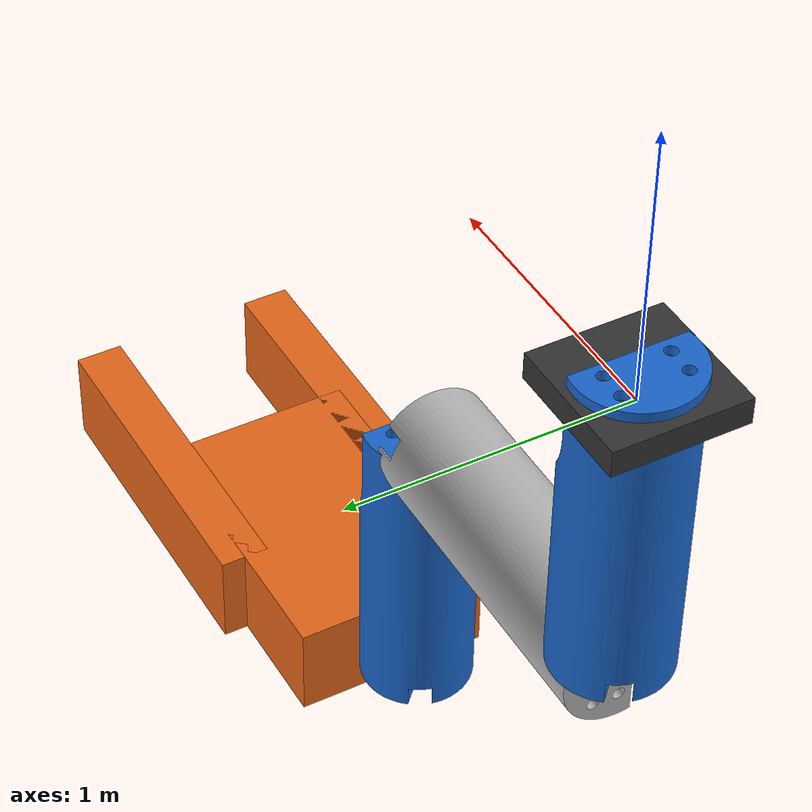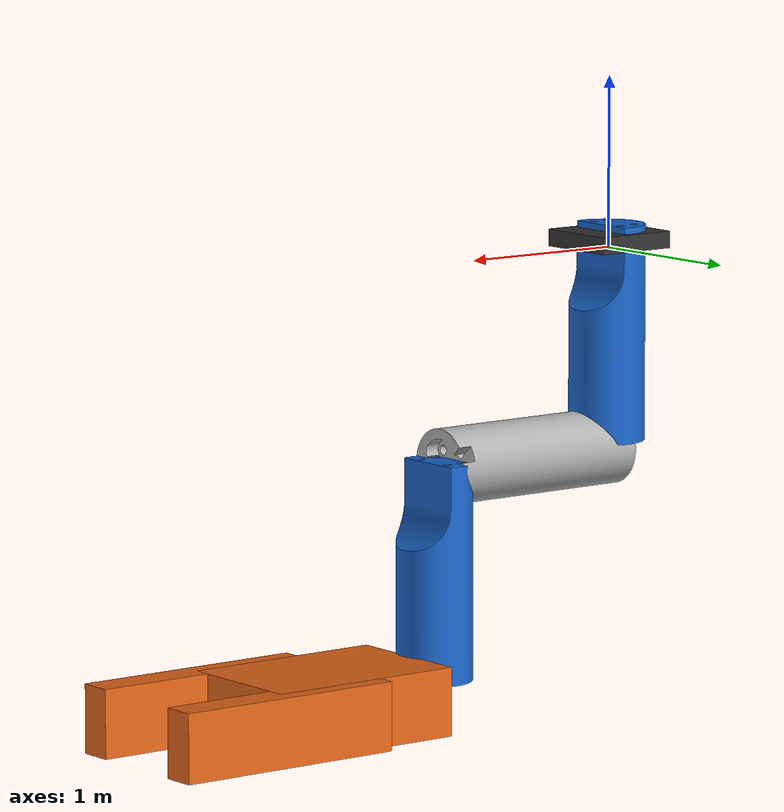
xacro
<?xml version="1.0"?>
<robot xmlns:xacro="http://www.ros.org/wiki/xacro" name="four_dof_arm">
  <!-- Robot geometry placeholders.
       Swap mesh filenames to your exported SLDPRT->(dae/stl) paths. -->

  <xacro:include filename="$(find four_dof_arm_description)/urdf/ros2_control.xacro"/>

  <xacro:arg name="controllers_file" default="$(find four_dof_arm_bringup)/config/ros2_controllers.yaml"/>
  <xacro:property name="mesh_dir" value="$(find four_dof_arm_description)/meshes"/>
  <xacro:property name="controllers_file_path" value="$(arg controllers_file)"/>

  <!-- Basic link dimensions (scaled 10x) -->
  <xacro:property name="link1_length" value="1.27"/>
  <xacro:property name="link2_length" value="1.27"/>
  <xacro:property name="link3_length" value="1.27"/>
  <!-- Convert millimeter-based meshes to meters and scale 10x -->
  <xacro:property name="mesh_scale" value="0.01 0.01 0.01"/>

  <xacro:macro name="default_inertial" params="mass">
    <inertial>
      <origin xyz="0 0 0" rpy="0 0 0"/>
      <mass value="${mass}"/>
      <inertia ixx="0.001" ixy="0.0" ixz="0.0" iyy="0.001" iyz="0.0" izz="0.001"/>
    </inertial>
  </xacro:macro>

  <!-- Anchor the base to the simulation world so joint1 rotates link1 (and the chain)
       instead of spinning the base itself. -->
  <link name="world"/>
  <joint name="world_to_base" type="fixed">
    <origin xyz="0 0 0" rpy="0 0 0"/>
    <parent link="world"/>
    <child link="base_link"/>
  </joint>

  <!-- Base -->
  <link name="base_link">
    <visual>
      <origin xyz="0 0 0.05" rpy="0 0 0"/>
      <geometry>
        <!-- Visible base to anchor the first joint -->
        <box size="0.50 0.50 0.10"/>
      </geometry>
      <material name="dark_grey">
        <color rgba="0.2 0.2 0.2 1.0"/>
      </material>
    </visual>
    <collision>
      <origin xyz="0 0 0.05" rpy="0 0 0"/>
      <geometry>
        <box size="0.50 0.50 0.10"/>
      </geometry>
    </collision>
    <xacro:default_inertial mass="5.0"/>
  </link>

  <gazebo reference="base_link">
    <collide_bitmask>0x00</collide_bitmask>
  </gazebo>

  <joint name="joint1" type="revolute">
    <origin xyz="0 0 0.10" rpy="0 0 0"/> <!-- Place joint1 above base top; links hang below -->
    <axis xyz="0 0 -1"/> <!-- roll link1 about its long axis -->
    <parent link="base_link"/>
    <child link="link1"/>
    <limit lower="-3.14" upper="3.14" effort="50" velocity="1.5"/>
    <dynamics damping="0.1" friction="0.0"/>
  </joint>

  <link name="link1">
    <visual>
      <origin xyz="-0.20945 -0.22269 0.03755" rpy="-1.5708 0 0"/> <!-- original mesh offset -->
      <geometry>
        <mesh filename="${mesh_dir}/Link.STL" scale="${mesh_scale}"/>
      </geometry>
      <material name="blue">
        <color rgba="0.1 0.4 0.8 1.0"/>
      </material>
    </visual>
    <collision>
      <origin xyz="0 0 0" rpy="0 0 0"/>
      <geometry>
        <sphere radius="0.01"/>
      </geometry>
    </collision>
    <xacro:default_inertial mass="3.0"/>
  </link>

  <gazebo reference="link1">
    <collide_bitmask>0x00</collide_bitmask>
  </gazebo>

  <joint name="joint2" type="revolute">
    <origin xyz="0 0 -${link1_length}" rpy="0 0 0"/> <!-- end of link1 -->
    <axis xyz="1 0 0"/> <!-- roll link2 about its long axis (+X) -->
    <parent link="link1"/>
    <child link="link2"/>
    <limit lower="-2.5" upper="2.5" effort="40" velocity="1.5"/>
    <dynamics damping="0.1" friction="0.0"/>
  </joint>

  <link name="link2">
    <visual>
      <origin xyz="-0.03755 0.20945 -0.22269" rpy="0 0 -1.5708"/> <!-- original mesh offset -->
      <geometry>
        <mesh filename="${mesh_dir}/Link.STL" scale="${mesh_scale}"/>
      </geometry>
      <material name="light_grey">
        <color rgba="0.7 0.7 0.7 1.0"/>
      </material>
    </visual>
    <collision>
      <origin xyz="0 0 0" rpy="0 0 0"/>
      <geometry>
        <sphere radius="0.01"/>
      </geometry>
    </collision>
    <xacro:default_inertial mass="2.0"/>
  </link>

  <gazebo reference="link2">
    <collide_bitmask>0x00</collide_bitmask>
  </gazebo>

  <joint name="joint3" type="revolute">
    <origin xyz="${link2_length} 0 0" rpy="0 0 0"/> <!-- end of link2 -->
    <axis xyz="0 0 -1"/> <!-- roll link3 about its long axis (-Z) -->
    <parent link="link2"/>
    <child link="link3"/>
    <limit lower="-2.5" upper="2.5" effort="30" velocity="2.0"/>
    <dynamics damping="0.1" friction="0.0"/>
  </joint>

  <link name="link3">
    <visual>
      <origin xyz="-0.20945 -0.22269 0.03755" rpy="-1.5708 0 0"/> <!-- original mesh offset -->
      <geometry>
        <mesh filename="${mesh_dir}/Link.STL" scale="${mesh_scale}"/>
      </geometry>
      <material name="blue">
        <color rgba="0.1 0.4 0.8 1.0"/>
      </material>
    </visual>
    <collision>
      <origin xyz="0 0 0" rpy="0 0 0"/>
      <geometry>
        <sphere radius="0.01"/>
      </geometry>
    </collision>
    <xacro:default_inertial mass="1.5"/>
  </link>

  <gazebo reference="link3">
    <collide_bitmask>0x00</collide_bitmask>
  </gazebo>

  <joint name="joint4" type="revolute">
    <origin xyz="0 0 -${link3_length}" rpy="0 0 0"/>
    <axis xyz="1 0 0"/>
    <parent link="link3"/>
    <child link="tool0"/>
    <limit lower="-3.14" upper="3.14" effort="20" velocity="2.5"/>
    <dynamics damping="0.05" friction="0.0"/>
  </joint>

  <link name="tool0">
    <visual>
      <origin xyz="0.8 0 0" rpy="0 0 0"/>
      <geometry>
        <box size="1.2 0.8 0.4"/>
      </geometry>
      <material name="orange">
        <color rgba="0.9 0.4 0.1 1.0"/>
      </material>
    </visual>
    <visual>
      <origin xyz="1.4 0.4 0" rpy="0 0 0"/>
      <geometry>
        <box size="1.4 0.2 0.4"/>
      </geometry>
      <material name="orange">
        <color rgba="0.9 0.4 0.1 1.0"/>
      </material>
    </visual>
    <visual>
      <origin xyz="1.4 -0.4 0" rpy="0 0 0"/>
      <geometry>
        <box size="1.4 0.2 0.4"/>
      </geometry>
      <material name="orange">
        <color rgba="0.9 0.4 0.1 1.0"/>
      </material>
    </visual>
    <xacro:default_inertial mass="0.5"/>
  </link>

  <gazebo reference="tool0">
    <collide_bitmask>0x00</collide_bitmask>
  </gazebo>

  <xacro:ros2_control_block controllers_file="${controllers_file_path}"/>
</robot>
